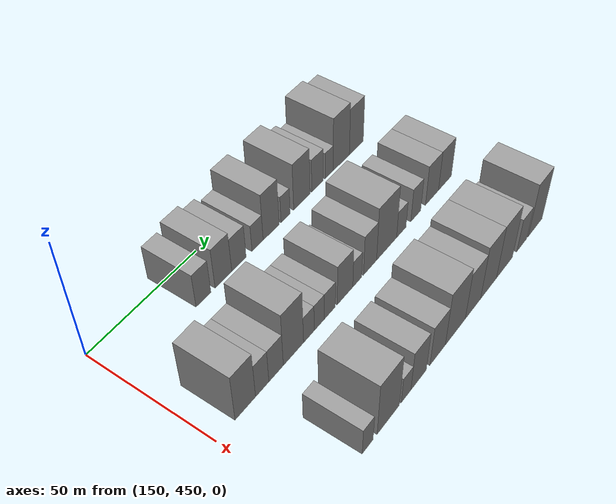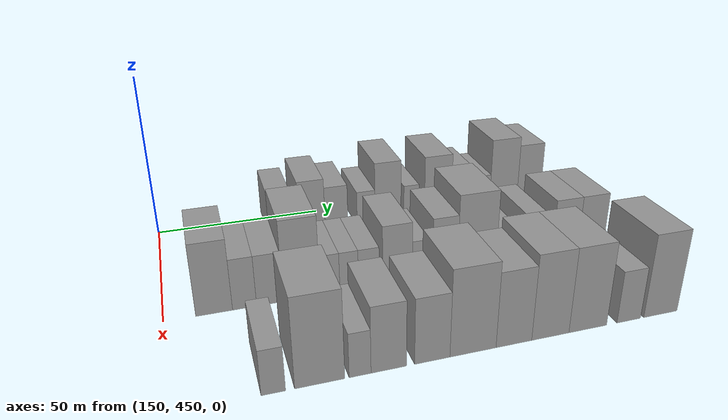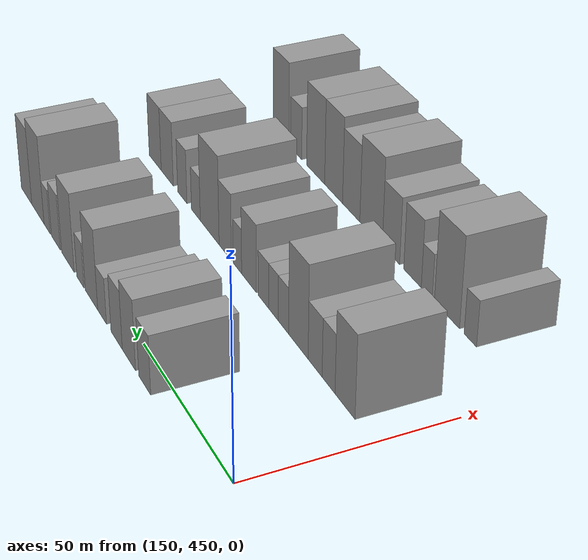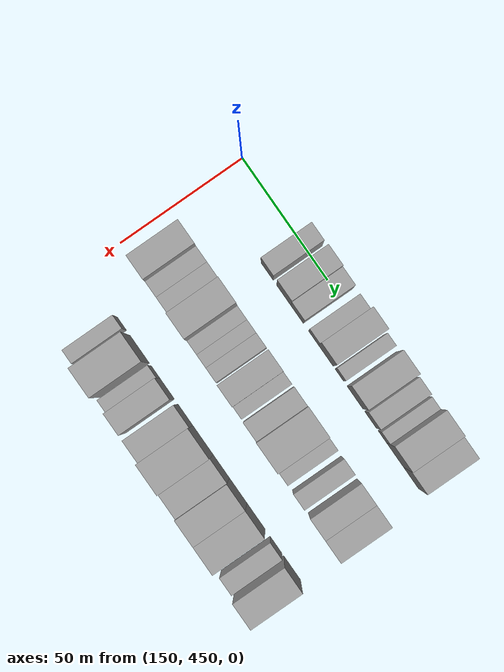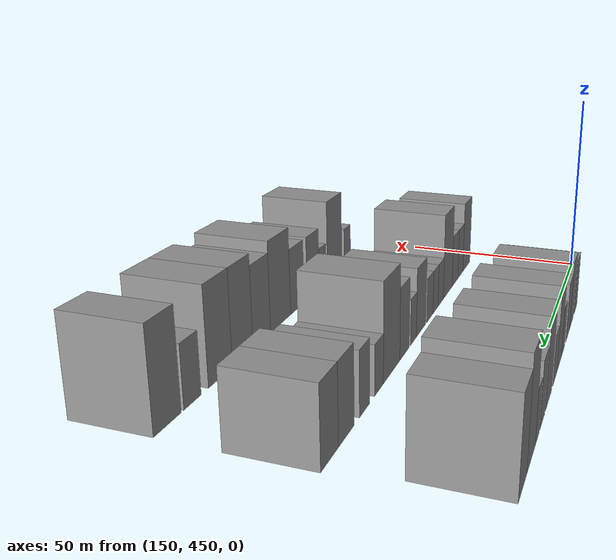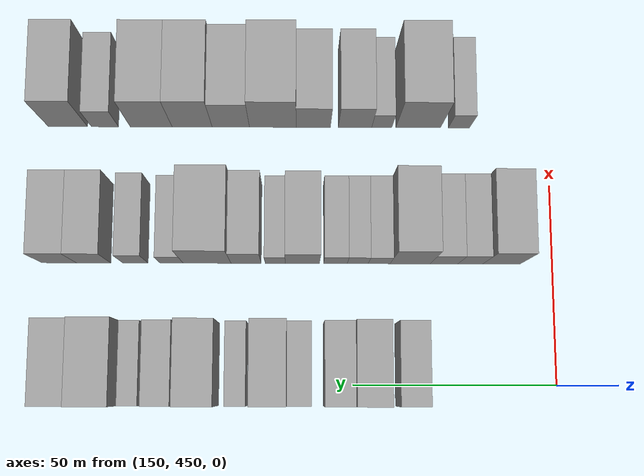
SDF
<sdf version="1.6">
 <world name="default">
  <model name="building_478">
   <static>1</static>
   <pose>155.0000 486.0501 0 0.000000 0.000000 0.000000</pose>
   <link name="link">
    <pose>0 0 7.50 0 0 0</pose>
    <collision name="collision"><geometry><box><size>20.0000 7.1548 15.0000</size></box></geometry></collision>
    <visual name="visual">
     <cast_shadows>0</cast_shadows>
     <geometry><box><size>20.0000 7.1548 15.0000</size></box></geometry>
     <material>
      <script>
       <uri>model://grey_wall/materials/scripts</uri>
       <uri>model://grey_wall/materials/textures</uri>
       <name>vrc/grey_wall</name>
      </script>
     </material>
    </visual>
   </link>
  </model>
  <model name="building_479">
   <static>1</static>
   <pose>155.0000 495.7822 0 0.000000 0.000000 0.000000</pose>
   <link name="link">
    <pose>0 0 9.00 0 0 0</pose>
    <collision name="collision"><geometry><box><size>20.0000 8.3094 18.0000</size></box></geometry></collision>
    <visual name="visual">
     <cast_shadows>0</cast_shadows>
     <geometry><box><size>20.0000 8.3094 18.0000</size></box></geometry>
     <material>
      <script>
       <uri>model://grey_wall/materials/scripts</uri>
       <uri>model://grey_wall/materials/textures</uri>
       <name>vrc/grey_wall</name>
      </script>
     </material>
    </visual>
   </link>
  </model>
  <model name="building_480">
   <static>1</static>
   <pose>155.0000 503.6037 0 0.000000 0.000000 0.000000</pose>
   <link name="link">
    <pose>0 0 7.50 0 0 0</pose>
    <collision name="collision"><geometry><box><size>20.0000 7.3335 15.0000</size></box></geometry></collision>
    <visual name="visual">
     <cast_shadows>0</cast_shadows>
     <geometry><box><size>20.0000 7.3335 15.0000</size></box></geometry>
     <material>
      <script>
       <uri>model://grey_wall/materials/scripts</uri>
       <uri>model://grey_wall/materials/textures</uri>
       <name>vrc/grey_wall</name>
      </script>
     </material>
    </visual>
   </link>
  </model>
  <model name="building_481">
   <static>1</static>
   <pose>155.0000 513.2215 0 0.000000 0.000000 0.000000</pose>
   <link name="link">
    <pose>0 0 6.00 0 0 0</pose>
    <collision name="collision"><geometry><box><size>20.0000 5.9022 12.0000</size></box></geometry></collision>
    <visual name="visual">
     <cast_shadows>0</cast_shadows>
     <geometry><box><size>20.0000 5.9022 12.0000</size></box></geometry>
     <material>
      <script>
       <uri>model://grey_wall/materials/scripts</uri>
       <uri>model://grey_wall/materials/textures</uri>
       <name>vrc/grey_wall</name>
      </script>
     </material>
    </visual>
   </link>
  </model>
  <model name="building_482">
   <static>1</static>
   <pose>155.0000 520.5018 0 0.000000 0.000000 0.000000</pose>
   <link name="link">
    <pose>0 0 10.50 0 0 0</pose>
    <collision name="collision"><geometry><box><size>20.0000 8.6583 21.0000</size></box></geometry></collision>
    <visual name="visual">
     <cast_shadows>0</cast_shadows>
     <geometry><box><size>20.0000 8.6583 21.0000</size></box></geometry>
     <material>
      <script>
       <uri>model://grey_wall/materials/scripts</uri>
       <uri>model://grey_wall/materials/textures</uri>
       <name>vrc/grey_wall</name>
      </script>
     </material>
    </visual>
   </link>
  </model>
  <model name="building_483">
   <static>1</static>
   <pose>155.0000 528.3558 0 0.000000 0.000000 0.000000</pose>
   <link name="link">
    <pose>0 0 6.00 0 0 0</pose>
    <collision name="collision"><geometry><box><size>20.0000 5.0499 12.0000</size></box></geometry></collision>
    <visual name="visual">
     <cast_shadows>0</cast_shadows>
     <geometry><box><size>20.0000 5.0499 12.0000</size></box></geometry>
     <material>
      <script>
       <uri>model://grey_wall/materials/scripts</uri>
       <uri>model://grey_wall/materials/textures</uri>
       <name>vrc/grey_wall</name>
      </script>
     </material>
    </visual>
   </link>
  </model>
  <model name="building_484">
   <static>1</static>
   <pose>155.0000 537.5668 0 0.000000 0.000000 0.000000</pose>
   <link name="link">
    <pose>0 0 10.50 0 0 0</pose>
    <collision name="collision"><geometry><box><size>20.0000 9.3721 21.0000</size></box></geometry></collision>
    <visual name="visual">
     <cast_shadows>0</cast_shadows>
     <geometry><box><size>20.0000 9.3721 21.0000</size></box></geometry>
     <material>
      <script>
       <uri>model://grey_wall/materials/scripts</uri>
       <uri>model://grey_wall/materials/textures</uri>
       <name>vrc/grey_wall</name>
      </script>
     </material>
    </visual>
   </link>
  </model>
  <model name="building_485">
   <static>1</static>
   <pose>155.0000 546.6877 0 0.000000 0.000000 0.000000</pose>
   <link name="link">
    <pose>0 0 7.50 0 0 0</pose>
    <collision name="collision"><geometry><box><size>20.0000 6.8697 15.0000</size></box></geometry></collision>
    <visual name="visual">
     <cast_shadows>0</cast_shadows>
     <geometry><box><size>20.0000 6.8697 15.0000</size></box></geometry>
     <material>
      <script>
       <uri>model://grey_wall/materials/scripts</uri>
       <uri>model://grey_wall/materials/textures</uri>
       <name>vrc/grey_wall</name>
      </script>
     </material>
    </visual>
   </link>
  </model>
  <model name="building_486">
   <static>1</static>
   <pose>155.0000 553.5681 0 0.000000 0.000000 0.000000</pose>
   <link name="link">
    <pose>0 0 6.00 0 0 0</pose>
    <collision name="collision"><geometry><box><size>20.0000 4.8910 12.0000</size></box></geometry></collision>
    <visual name="visual">
     <cast_shadows>0</cast_shadows>
     <geometry><box><size>20.0000 4.8910 12.0000</size></box></geometry>
     <material>
      <script>
       <uri>model://grey_wall/materials/scripts</uri>
       <uri>model://grey_wall/materials/textures</uri>
       <name>vrc/grey_wall</name>
      </script>
     </material>
    </visual>
   </link>
  </model>
  <model name="building_487">
   <static>1</static>
   <pose>155.0000 561.0278 0 0.000000 0.000000 0.000000</pose>
   <link name="link">
    <pose>0 0 12.00 0 0 0</pose>
    <collision name="collision"><geometry><box><size>20.0000 10.0286 24.0000</size></box></geometry></collision>
    <visual name="visual">
     <cast_shadows>0</cast_shadows>
     <geometry><box><size>20.0000 10.0286 24.0000</size></box></geometry>
     <material>
      <script>
       <uri>model://grey_wall/materials/scripts</uri>
       <uri>model://grey_wall/materials/textures</uri>
       <name>vrc/grey_wall</name>
      </script>
     </material>
    </visual>
   </link>
  </model>
  <model name="building_488">
   <static>1</static>
   <pose>155.0000 570.4711 0 0.000000 0.000000 0.000000</pose>
   <link name="link">
    <pose>0 0 10.50 0 0 0</pose>
    <collision name="collision"><geometry><box><size>20.0000 8.8579 21.0000</size></box></geometry></collision>
    <visual name="visual">
     <cast_shadows>0</cast_shadows>
     <geometry><box><size>20.0000 8.8579 21.0000</size></box></geometry>
     <material>
      <script>
       <uri>model://grey_wall/materials/scripts</uri>
       <uri>model://grey_wall/materials/textures</uri>
       <name>vrc/grey_wall</name>
      </script>
     </material>
    </visual>
   </link>
  </model>
  <model name="building_605">
   <static>1</static>
   <pose>190.0000 462.7870 0 0.000000 0.000000 0.000000</pose>
   <link name="link">
    <pose>0 0 10.50 0 0 0</pose>
    <collision name="collision"><geometry><box><size>20.0000 9.3218 21.0000</size></box></geometry></collision>
    <visual name="visual">
     <cast_shadows>0</cast_shadows>
     <geometry><box><size>20.0000 9.3218 21.0000</size></box></geometry>
     <material>
      <script>
       <uri>model://grey_wall/materials/scripts</uri>
       <uri>model://grey_wall/materials/textures</uri>
       <name>vrc/grey_wall</name>
      </script>
     </material>
    </visual>
   </link>
  </model>
  <model name="building_606">
   <static>1</static>
   <pose>190.0000 470.5636 0 0.000000 0.000000 0.000000</pose>
   <link name="link">
    <pose>0 0 7.50 0 0 0</pose>
    <collision name="collision"><geometry><box><size>20.0000 6.2315 15.0000</size></box></geometry></collision>
    <visual name="visual">
     <cast_shadows>0</cast_shadows>
     <geometry><box><size>20.0000 6.2315 15.0000</size></box></geometry>
     <material>
      <script>
       <uri>model://grey_wall/materials/scripts</uri>
       <uri>model://grey_wall/materials/textures</uri>
       <name>vrc/grey_wall</name>
      </script>
     </material>
    </visual>
   </link>
  </model>
  <model name="building_607">
   <static>1</static>
   <pose>190.0000 477.1397 0 0.000000 0.000000 0.000000</pose>
   <link name="link">
    <pose>0 0 7.50 0 0 0</pose>
    <collision name="collision"><geometry><box><size>20.0000 6.9206 15.0000</size></box></geometry></collision>
    <visual name="visual">
     <cast_shadows>0</cast_shadows>
     <geometry><box><size>20.0000 6.9206 15.0000</size></box></geometry>
     <material>
      <script>
       <uri>model://grey_wall/materials/scripts</uri>
       <uri>model://grey_wall/materials/textures</uri>
       <name>vrc/grey_wall</name>
      </script>
     </material>
    </visual>
   </link>
  </model>
  <model name="building_608">
   <static>1</static>
   <pose>190.0000 485.6102 0 0.000000 0.000000 0.000000</pose>
   <link name="link">
    <pose>0 0 12.00 0 0 0</pose>
    <collision name="collision"><geometry><box><size>20.0000 10.0204 24.0000</size></box></geometry></collision>
    <visual name="visual">
     <cast_shadows>0</cast_shadows>
     <geometry><box><size>20.0000 10.0204 24.0000</size></box></geometry>
     <material>
      <script>
       <uri>model://grey_wall/materials/scripts</uri>
       <uri>model://grey_wall/materials/textures</uri>
       <name>vrc/grey_wall</name>
      </script>
     </material>
    </visual>
   </link>
  </model>
  <model name="building_609">
   <static>1</static>
   <pose>190.0000 493.3635 0 0.000000 0.000000 0.000000</pose>
   <link name="link">
    <pose>0 0 6.00 0 0 0</pose>
    <collision name="collision"><geometry><box><size>20.0000 5.4864 12.0000</size></box></geometry></collision>
    <visual name="visual">
     <cast_shadows>0</cast_shadows>
     <geometry><box><size>20.0000 5.4864 12.0000</size></box></geometry>
     <material>
      <script>
       <uri>model://grey_wall/materials/scripts</uri>
       <uri>model://grey_wall/materials/textures</uri>
       <name>vrc/grey_wall</name>
      </script>
     </material>
    </visual>
   </link>
  </model>
  <model name="building_610">
   <static>1</static>
   <pose>190.0000 498.7189 0 0.000000 0.000000 0.000000</pose>
   <link name="link">
    <pose>0 0 6.00 0 0 0</pose>
    <collision name="collision"><geometry><box><size>20.0000 5.2244 12.0000</size></box></geometry></collision>
    <visual name="visual">
     <cast_shadows>0</cast_shadows>
     <geometry><box><size>20.0000 5.2244 12.0000</size></box></geometry>
     <material>
      <script>
       <uri>model://grey_wall/materials/scripts</uri>
       <uri>model://grey_wall/materials/textures</uri>
       <name>vrc/grey_wall</name>
      </script>
     </material>
    </visual>
   </link>
  </model>
  <model name="building_611">
   <static>1</static>
   <pose>190.0000 504.2691 0 0.000000 0.000000 0.000000</pose>
   <link name="link">
    <pose>0 0 6.00 0 0 0</pose>
    <collision name="collision"><geometry><box><size>20.0000 5.8760 12.0000</size></box></geometry></collision>
    <visual name="visual">
     <cast_shadows>0</cast_shadows>
     <geometry><box><size>20.0000 5.8760 12.0000</size></box></geometry>
     <material>
      <script>
       <uri>model://grey_wall/materials/scripts</uri>
       <uri>model://grey_wall/materials/textures</uri>
       <name>vrc/grey_wall</name>
      </script>
     </material>
    </visual>
   </link>
  </model>
  <model name="building_612">
   <static>1</static>
   <pose>190.0000 512.4683 0 0.000000 0.000000 0.000000</pose>
   <link name="link">
    <pose>0 0 9.00 0 0 0</pose>
    <collision name="collision"><geometry><box><size>20.0000 8.5224 18.0000</size></box></geometry></collision>
    <visual name="visual">
     <cast_shadows>0</cast_shadows>
     <geometry><box><size>20.0000 8.5224 18.0000</size></box></geometry>
     <material>
      <script>
       <uri>model://grey_wall/materials/scripts</uri>
       <uri>model://grey_wall/materials/textures</uri>
       <name>vrc/grey_wall</name>
      </script>
     </material>
    </visual>
   </link>
  </model>
  <model name="building_613">
   <static>1</static>
   <pose>190.0000 519.2357 0 0.000000 0.000000 0.000000</pose>
   <link name="link">
    <pose>0 0 6.00 0 0 0</pose>
    <collision name="collision"><geometry><box><size>20.0000 5.0125 12.0000</size></box></geometry></collision>
    <visual name="visual">
     <cast_shadows>0</cast_shadows>
     <geometry><box><size>20.0000 5.0125 12.0000</size></box></geometry>
     <material>
      <script>
       <uri>model://grey_wall/materials/scripts</uri>
       <uri>model://grey_wall/materials/textures</uri>
       <name>vrc/grey_wall</name>
      </script>
     </material>
    </visual>
   </link>
  </model>
  <model name="building_614">
   <static>1</static>
   <pose>190.0000 526.5103 0 0.000000 0.000000 0.000000</pose>
   <link name="link">
    <pose>0 0 9.00 0 0 0</pose>
    <collision name="collision"><geometry><box><size>20.0000 7.5366 18.0000</size></box></geometry></collision>
    <visual name="visual">
     <cast_shadows>0</cast_shadows>
     <geometry><box><size>20.0000 7.5366 18.0000</size></box></geometry>
     <material>
      <script>
       <uri>model://grey_wall/materials/scripts</uri>
       <uri>model://grey_wall/materials/textures</uri>
       <name>vrc/grey_wall</name>
      </script>
     </material>
    </visual>
   </link>
  </model>
  <model name="building_615">
   <static>1</static>
   <pose>190.0000 536.2456 0 0.000000 0.000000 0.000000</pose>
   <link name="link">
    <pose>0 0 12.00 0 0 0</pose>
    <collision name="collision"><geometry><box><size>20.0000 11.9341 24.0000</size></box></geometry></collision>
    <visual name="visual">
     <cast_shadows>0</cast_shadows>
     <geometry><box><size>20.0000 11.9341 24.0000</size></box></geometry>
     <material>
      <script>
       <uri>model://grey_wall/materials/scripts</uri>
       <uri>model://grey_wall/materials/textures</uri>
       <name>vrc/grey_wall</name>
      </script>
     </material>
    </visual>
   </link>
  </model>
  <model name="building_616">
   <static>1</static>
   <pose>190.0000 545.1127 0 0.000000 0.000000 0.000000</pose>
   <link name="link">
    <pose>0 0 6.00 0 0 0</pose>
    <collision name="collision"><geometry><box><size>20.0000 5.8002 12.0000</size></box></geometry></collision>
    <visual name="visual">
     <cast_shadows>0</cast_shadows>
     <geometry><box><size>20.0000 5.8002 12.0000</size></box></geometry>
     <material>
      <script>
       <uri>model://grey_wall/materials/scripts</uri>
       <uri>model://grey_wall/materials/textures</uri>
       <name>vrc/grey_wall</name>
      </script>
     </material>
    </visual>
   </link>
  </model>
  <model name="building_617">
   <static>1</static>
   <pose>190.0000 554.1620 0 0.000000 0.000000 0.000000</pose>
   <link name="link">
    <pose>0 0 7.50 0 0 0</pose>
    <collision name="collision"><geometry><box><size>20.0000 6.2983 15.0000</size></box></geometry></collision>
    <visual name="visual">
     <cast_shadows>0</cast_shadows>
     <geometry><box><size>20.0000 6.2983 15.0000</size></box></geometry>
     <material>
      <script>
       <uri>model://grey_wall/materials/scripts</uri>
       <uri>model://grey_wall/materials/textures</uri>
       <name>vrc/grey_wall</name>
      </script>
     </material>
    </visual>
   </link>
  </model>
  <model name="building_618">
   <static>1</static>
   <pose>190.0000 564.5860 0 0.000000 0.000000 0.000000</pose>
   <link name="link">
    <pose>0 0 9.00 0 0 0</pose>
    <collision name="collision"><geometry><box><size>20.0000 8.5497 18.0000</size></box></geometry></collision>
    <visual name="visual">
     <cast_shadows>0</cast_shadows>
     <geometry><box><size>20.0000 8.5497 18.0000</size></box></geometry>
     <material>
      <script>
       <uri>model://grey_wall/materials/scripts</uri>
       <uri>model://grey_wall/materials/textures</uri>
       <name>vrc/grey_wall</name>
      </script>
     </material>
    </visual>
   </link>
  </model>
  <model name="building_619">
   <static>1</static>
   <pose>190.0000 573.2235 0 0.000000 0.000000 0.000000</pose>
   <link name="link">
    <pose>0 0 9.00 0 0 0</pose>
    <collision name="collision"><geometry><box><size>20.0000 8.7254 18.0000</size></box></geometry></collision>
    <visual name="visual">
     <cast_shadows>0</cast_shadows>
     <geometry><box><size>20.0000 8.7254 18.0000</size></box></geometry>
     <material>
      <script>
       <uri>model://grey_wall/materials/scripts</uri>
       <uri>model://grey_wall/materials/textures</uri>
       <name>vrc/grey_wall</name>
      </script>
     </material>
    </visual>
   </link>
  </model>
  <model name="building_733">
   <static>1</static>
   <pose>225.0000 472.5632 0 0.000000 0.000000 0.000000</pose>
   <link name="link">
    <pose>0 0 6.00 0 0 0</pose>
    <collision name="collision"><geometry><box><size>20.0000 5.4198 12.0000</size></box></geometry></collision>
    <visual name="visual">
     <cast_shadows>0</cast_shadows>
     <geometry><box><size>20.0000 5.4198 12.0000</size></box></geometry>
     <material>
      <script>
       <uri>model://grey_wall/materials/scripts</uri>
       <uri>model://grey_wall/materials/textures</uri>
       <name>vrc/grey_wall</name>
      </script>
     </material>
    </visual>
   </link>
  </model>
  <model name="building_734">
   <static>1</static>
   <pose>225.0000 482.9969 0 0.000000 0.000000 0.000000</pose>
   <link name="link">
    <pose>0 0 12.00 0 0 0</pose>
    <collision name="collision"><geometry><box><size>20.0000 11.4476 24.0000</size></box></geometry></collision>
    <visual name="visual">
     <cast_shadows>0</cast_shadows>
     <geometry><box><size>20.0000 11.4476 24.0000</size></box></geometry>
     <material>
      <script>
       <uri>model://grey_wall/materials/scripts</uri>
       <uri>model://grey_wall/materials/textures</uri>
       <name>vrc/grey_wall</name>
      </script>
     </material>
    </visual>
   </link>
  </model>
  <model name="building_735">
   <static>1</static>
   <pose>225.0000 492.2996 0 0.000000 0.000000 0.000000</pose>
   <link name="link">
    <pose>0 0 6.00 0 0 0</pose>
    <collision name="collision"><geometry><box><size>20.0000 5.1578 12.0000</size></box></geometry></collision>
    <visual name="visual">
     <cast_shadows>0</cast_shadows>
     <geometry><box><size>20.0000 5.1578 12.0000</size></box></geometry>
     <material>
      <script>
       <uri>model://grey_wall/materials/scripts</uri>
       <uri>model://grey_wall/materials/textures</uri>
       <name>vrc/grey_wall</name>
      </script>
     </material>
    </visual>
   </link>
  </model>
  <model name="building_736">
   <static>1</static>
   <pose>225.0000 499.1376 0 0.000000 0.000000 0.000000</pose>
   <link name="link">
    <pose>0 0 9.00 0 0 0</pose>
    <collision name="collision"><geometry><box><size>20.0000 8.5182 18.0000</size></box></geometry></collision>
    <visual name="visual">
     <cast_shadows>0</cast_shadows>
     <geometry><box><size>20.0000 8.5182 18.0000</size></box></geometry>
     <material>
      <script>
       <uri>model://grey_wall/materials/scripts</uri>
       <uri>model://grey_wall/materials/textures</uri>
       <name>vrc/grey_wall</name>
      </script>
     </material>
    </visual>
   </link>
  </model>
  <model name="building_737">
   <static>1</static>
   <pose>225.0000 509.7912 0 0.000000 0.000000 0.000000</pose>
   <link name="link">
    <pose>0 0 9.00 0 0 0</pose>
    <collision name="collision"><geometry><box><size>20.0000 8.7891 18.0000</size></box></geometry></collision>
    <visual name="visual">
     <cast_shadows>0</cast_shadows>
     <geometry><box><size>20.0000 8.7891 18.0000</size></box></geometry>
     <material>
      <script>
       <uri>model://grey_wall/materials/scripts</uri>
       <uri>model://grey_wall/materials/textures</uri>
       <name>vrc/grey_wall</name>
      </script>
     </material>
    </visual>
   </link>
  </model>
  <model name="building_738">
   <static>1</static>
   <pose>225.0000 520.1275 0 0.000000 0.000000 0.000000</pose>
   <link name="link">
    <pose>0 0 12.00 0 0 0</pose>
    <collision name="collision"><geometry><box><size>20.0000 11.8835 24.0000</size></box></geometry></collision>
    <visual name="visual">
     <cast_shadows>0</cast_shadows>
     <geometry><box><size>20.0000 11.8835 24.0000</size></box></geometry>
     <material>
      <script>
       <uri>model://grey_wall/materials/scripts</uri>
       <uri>model://grey_wall/materials/textures</uri>
       <name>vrc/grey_wall</name>
      </script>
     </material>
    </visual>
   </link>
  </model>
  <model name="building_739">
   <static>1</static>
   <pose>225.0000 530.8205 0 0.000000 0.000000 0.000000</pose>
   <link name="link">
    <pose>0 0 10.50 0 0 0</pose>
    <collision name="collision"><geometry><box><size>20.0000 9.5025 21.0000</size></box></geometry></collision>
    <visual name="visual">
     <cast_shadows>0</cast_shadows>
     <geometry><box><size>20.0000 9.5025 21.0000</size></box></geometry>
     <material>
      <script>
       <uri>model://grey_wall/materials/scripts</uri>
       <uri>model://grey_wall/materials/textures</uri>
       <name>vrc/grey_wall</name>
      </script>
     </material>
    </visual>
   </link>
  </model>
  <model name="building_740">
   <static>1</static>
   <pose>225.0000 540.6843 0 0.000000 0.000000 0.000000</pose>
   <link name="link">
    <pose>0 0 12.00 0 0 0</pose>
    <collision name="collision"><geometry><box><size>20.0000 10.2251 24.0000</size></box></geometry></collision>
    <visual name="visual">
     <cast_shadows>0</cast_shadows>
     <geometry><box><size>20.0000 10.2251 24.0000</size></box></geometry>
     <material>
      <script>
       <uri>model://grey_wall/materials/scripts</uri>
       <uri>model://grey_wall/materials/textures</uri>
       <name>vrc/grey_wall</name>
      </script>
     </material>
    </visual>
   </link>
  </model>
  <model name="building_741">
   <static>1</static>
   <pose>225.0000 551.1449 0 0.000000 0.000000 0.000000</pose>
   <link name="link">
    <pose>0 0 12.00 0 0 0</pose>
    <collision name="collision"><geometry><box><size>20.0000 10.6962 24.0000</size></box></geometry></collision>
    <visual name="visual">
     <cast_shadows>0</cast_shadows>
     <geometry><box><size>20.0000 10.6962 24.0000</size></box></geometry>
     <material>
      <script>
       <uri>model://grey_wall/materials/scripts</uri>
       <uri>model://grey_wall/materials/textures</uri>
       <name>vrc/grey_wall</name>
      </script>
     </material>
    </visual>
   </link>
  </model>
  <model name="building_742">
   <static>1</static>
   <pose>225.0000 562.9381 0 0.000000 0.000000 0.000000</pose>
   <link name="link">
    <pose>0 0 7.50 0 0 0</pose>
    <collision name="collision"><geometry><box><size>20.0000 6.8903 15.0000</size></box></geometry></collision>
    <visual name="visual">
     <cast_shadows>0</cast_shadows>
     <geometry><box><size>20.0000 6.8903 15.0000</size></box></geometry>
     <material>
      <script>
       <uri>model://grey_wall/materials/scripts</uri>
       <uri>model://grey_wall/materials/textures</uri>
       <name>vrc/grey_wall</name>
      </script>
     </material>
    </visual>
   </link>
  </model>
  <model name="building_743">
   <static>1</static>
   <pose>225.0000 572.3959 0 0.000000 0.000000 0.000000</pose>
   <link name="link">
    <pose>0 0 12.00 0 0 0</pose>
    <collision name="collision"><geometry><box><size>20.0000 10.0251 24.0000</size></box></geometry></collision>
    <visual name="visual">
     <cast_shadows>0</cast_shadows>
     <geometry><box><size>20.0000 10.0251 24.0000</size></box></geometry>
     <material>
      <script>
       <uri>model://grey_wall/materials/scripts</uri>
       <uri>model://grey_wall/materials/textures</uri>
       <name>vrc/grey_wall</name>
      </script>
     </material>
    </visual>
   </link>
  </model>
 </world>
</sdf>
